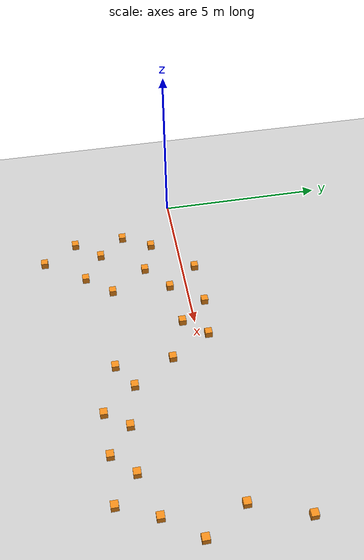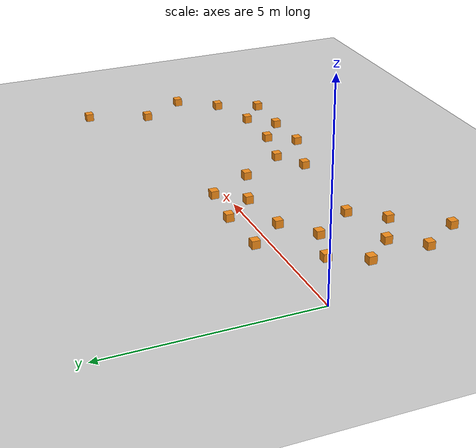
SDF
<sdf version="1.5">
 <world name="default">
  <physics name="fast" type="ignored">
   <max_step_size>0.001</max_step_size>
   <real_time_factor>0</real_time_factor>
  </physics>
  <plugin filename="ignition-gazebo-physics-system" name="ignition::gazebo::systems::Physics"/>
  <plugin filename="ignition-gazebo-user-commands-system" name="ignition::gazebo::systems::UserCommands"/>
  <plugin filename="ignition-gazebo-scene-broadcaster-system" name="ignition::gazebo::systems::SceneBroadcaster"/>
  <plugin filename="ignition-gazebo-contact-system" name="ignition::gazebo::systems::Contact"/>
  <include><uri>model://sun</uri></include>
  <include><uri>model://ground_plane</uri></include>
  <model name="unit_box_clone">
   <pose>1.72976 -0.812197 0.100735 4e-06 -3e-06 0</pose>
   <link name="link">
    <inertial>
     <mass>1</mass>
     <inertia>
      <ixx>0.166667</ixx>
      <ixy>0</ixy>
      <ixz>0</ixz>
      <iyy>0.166667</iyy>
      <iyz>0</iyz>
      <izz>0.166667</izz>
     </inertia>
    </inertial>
    <collision name="collision">
     <geometry><box><size>0.201469 0.201469 0.201469</size></box></geometry>
    </collision>
    <visual name="visual">
     <geometry><box><size>0.201469 0.201469 0.201469</size></box></geometry>
     <material>
      <script><name>Gazebo/Orange</name><uri>file://media/materials/scripts/gazebo.material</uri></script>
     </material>
    </visual>
   </link>
  </model>
  <model name="unit_box_clone_0">
   <pose>1.24328 -1.66091 0.100735 4e-06 -3e-06 0</pose>
   <link name="link">
    <inertial>
     <mass>1</mass>
     <inertia>
      <ixx>0.166667</ixx>
      <ixy>0</ixy>
      <ixz>0</ixz>
      <iyy>0.166667</iyy>
      <iyz>0</iyz>
      <izz>0.166667</izz>
     </inertia>
    </inertial>
    <collision name="collision">
     <geometry><box><size>0.201469 0.201469 0.201469</size></box></geometry>
    </collision>
    <visual name="visual">
     <geometry><box><size>0.201469 0.201469 0.201469</size></box></geometry>
     <material>
      <script><name>Gazebo/Orange</name><uri>file://media/materials/scripts/gazebo.material</uri></script>
     </material>
    </visual>
   </link>
  </model>
  <model name="unit_box_clone_1">
   <pose>1.90588 -2.41851 0.100735 4e-06 -3e-06 0</pose>
   <link name="link">
    <inertial>
     <mass>1</mass>
     <inertia>
      <ixx>0.166667</ixx>
      <ixy>0</ixy>
      <ixz>0</ixz>
      <iyy>0.166667</iyy>
      <iyz>0</iyz>
      <izz>0.166667</izz>
     </inertia>
    </inertial>
    <collision name="collision">
     <geometry><box><size>0.201469 0.201469 0.201469</size></box></geometry>
    </collision>
    <visual name="visual">
     <geometry><box><size>0.201469 0.201469 0.201469</size></box></geometry>
     <material>
      <script><name>Gazebo/Orange</name><uri>file://media/materials/scripts/gazebo.material</uri></script>
     </material>
    </visual>
   </link>
  </model>
  <model name="unit_box_clone_2">
   <pose>1.30367 -3.1595 0.100734 4e-06 -3e-06 0</pose>
   <link name="link">
    <inertial>
     <mass>1</mass>
     <inertia>
      <ixx>0.166667</ixx>
      <ixy>0</ixy>
      <ixz>0</ixz>
      <iyy>0.166667</iyy>
      <iyz>0</iyz>
      <izz>0.166667</izz>
     </inertia>
    </inertial>
    <collision name="collision">
     <geometry><box><size>0.201469 0.201469 0.201469</size></box></geometry>
    </collision>
    <visual name="visual">
     <geometry><box><size>0.201469 0.201469 0.201469</size></box></geometry>
     <material>
      <script><name>Gazebo/Orange</name><uri>file://media/materials/scripts/gazebo.material</uri></script>
     </material>
    </visual>
   </link>
  </model>
  <model name="unit_box_clone_3">
   <pose>1.95368 -4.16063 0.100734 4e-06 -3e-06 0</pose>
   <link name="link">
    <inertial>
     <mass>1</mass>
     <inertia>
      <ixx>0.166667</ixx>
      <ixy>0</ixy>
      <ixz>0</ixz>
      <iyy>0.166667</iyy>
      <iyz>0</iyz>
      <izz>0.166667</izz>
     </inertia>
    </inertial>
    <collision name="collision">
     <geometry><box><size>0.201469 0.201469 0.201469</size></box></geometry>
    </collision>
    <visual name="visual">
     <geometry><box><size>0.201469 0.201469 0.201469</size></box></geometry>
     <material>
      <script><name>Gazebo/Orange</name><uri>file://media/materials/scripts/gazebo.material</uri></script>
     </material>
    </visual>
   </link>
  </model>
  <model name="unit_box_clone_4">
   <pose>2.8029 -2.96481 0.100734 4e-06 -3e-06 0</pose>
   <link name="link">
    <inertial>
     <mass>1</mass>
     <inertia>
      <ixx>0.166667</ixx>
      <ixy>0</ixy>
      <ixz>0</ixz>
      <iyy>0.166667</iyy>
      <iyz>0</iyz>
      <izz>0.166667</izz>
     </inertia>
    </inertial>
    <collision name="collision">
     <geometry><box><size>0.201469 0.201469 0.201469</size></box></geometry>
    </collision>
    <visual name="visual">
     <geometry><box><size>0.201469 0.201469 0.201469</size></box></geometry>
     <material>
      <script><name>Gazebo/Orange</name><uri>file://media/materials/scripts/gazebo.material</uri></script>
     </material>
    </visual>
   </link>
  </model>
  <model name="unit_box_clone_5">
   <pose>3.46356 -2.2145 0.100734 4e-06 -3e-06 0</pose>
   <link name="link">
    <inertial>
     <mass>1</mass>
     <inertia>
      <ixx>0.166667</ixx>
      <ixy>0</ixy>
      <ixz>0</ixz>
      <iyy>0.166667</iyy>
      <iyz>0</iyz>
      <izz>0.166667</izz>
     </inertia>
    </inertial>
    <collision name="collision">
     <geometry><box><size>0.201469 0.201469 0.201469</size></box></geometry>
    </collision>
    <visual name="visual">
     <geometry><box><size>0.201469 0.201469 0.201469</size></box></geometry>
     <material>
      <script><name>Gazebo/Orange</name><uri>file://media/materials/scripts/gazebo.material</uri></script>
     </material>
    </visual>
   </link>
  </model>
  <model name="unit_box_clone_6">
   <pose>2.72766 -1.14347 0.100734 4e-06 -3e-06 0</pose>
   <link name="link">
    <inertial>
     <mass>1</mass>
     <inertia>
      <ixx>0.166667</ixx>
      <ixy>0</ixy>
      <ixz>0</ixz>
      <iyy>0.166667</iyy>
      <iyz>0</iyz>
      <izz>0.166667</izz>
     </inertia>
    </inertial>
    <collision name="collision">
     <geometry><box><size>0.201469 0.201469 0.201469</size></box></geometry>
    </collision>
    <visual name="visual">
     <geometry><box><size>0.201469 0.201469 0.201469</size></box></geometry>
     <material>
      <script><name>Gazebo/Orange</name><uri>file://media/materials/scripts/gazebo.material</uri></script>
     </material>
    </visual>
   </link>
  </model>
  <model name="unit_box_clone_7">
   <pose>3.55881 -0.496748 0.100734 4e-06 -3e-06 0</pose>
   <link name="link">
    <inertial>
     <mass>1</mass>
     <inertia>
      <ixx>0.166667</ixx>
      <ixy>0</ixy>
      <ixz>0</ixz>
      <iyy>0.166667</iyy>
      <iyz>0</iyz>
      <izz>0.166667</izz>
     </inertia>
    </inertial>
    <collision name="collision">
     <geometry><box><size>0.201469 0.201469 0.201469</size></box></geometry>
    </collision>
    <visual name="visual">
     <geometry><box><size>0.201469 0.201469 0.201469</size></box></geometry>
     <material>
      <script><name>Gazebo/Orange</name><uri>file://media/materials/scripts/gazebo.material</uri></script>
     </material>
    </visual>
   </link>
  </model>
  <model name="unit_box_clone_8">
   <pose>2.8727 0.379101 0.100734 4e-06 -3e-06 0</pose>
   <link name="link">
    <inertial>
     <mass>1</mass>
     <inertia>
      <ixx>0.166667</ixx>
      <ixy>0</ixy>
      <ixz>0</ixz>
      <iyy>0.166667</iyy>
      <iyz>0</iyz>
      <izz>0.166667</izz>
     </inertia>
    </inertial>
    <collision name="collision">
     <geometry><box><size>0.201469 0.201469 0.201469</size></box></geometry>
    </collision>
    <visual name="visual">
     <geometry><box><size>0.201469 0.201469 0.201469</size></box></geometry>
     <material>
      <script><name>Gazebo/Orange</name><uri>file://media/materials/scripts/gazebo.material</uri></script>
     </material>
    </visual>
   </link>
  </model>
  <model name="unit_box_clone_9">
   <pose>4.2939 0.422765 0.100734 4e-06 -3e-06 0</pose>
   <link name="link">
    <inertial>
     <mass>1</mass>
     <inertia>
      <ixx>0.166667</ixx>
      <ixy>0</ixy>
      <ixz>0</ixz>
      <iyy>0.166667</iyy>
      <iyz>0</iyz>
      <izz>0.166667</izz>
     </inertia>
    </inertial>
    <collision name="collision">
     <geometry><box><size>0.201469 0.201469 0.201469</size></box></geometry>
    </collision>
    <visual name="visual">
     <geometry><box><size>0.201469 0.201469 0.201469</size></box></geometry>
     <material>
      <script><name>Gazebo/Orange</name><uri>file://media/materials/scripts/gazebo.material</uri></script>
     </material>
    </visual>
   </link>
  </model>
  <model name="unit_box_clone_10">
   <pose>4.9692 -0.356687 0.100734 4e-06 -3e-06 0</pose>
   <link name="link">
    <inertial>
     <mass>1</mass>
     <inertia>
      <ixx>0.166667</ixx>
      <ixy>0</ixy>
      <ixz>0</ixz>
      <iyy>0.166667</iyy>
      <iyz>0</iyz>
      <izz>0.166667</izz>
     </inertia>
    </inertial>
    <collision name="collision">
     <geometry><box><size>0.201469 0.201469 0.201469</size></box></geometry>
    </collision>
    <visual name="visual">
     <geometry><box><size>0.201469 0.201469 0.201469</size></box></geometry>
     <material>
      <script><name>Gazebo/Orange</name><uri>file://media/materials/scripts/gazebo.material</uri></script>
     </material>
    </visual>
   </link>
  </model>
  <model name="unit_box_clone_11">
   <pose>5.54943 0.300041 0.100734 4e-06 -3e-06 0</pose>
   <link name="link">
    <inertial>
     <mass>1</mass>
     <inertia>
      <ixx>0.166667</ixx>
      <ixy>0</ixy>
      <ixz>0</ixz>
      <iyy>0.166667</iyy>
      <iyz>0</iyz>
      <izz>0.166667</izz>
     </inertia>
    </inertial>
    <collision name="collision">
     <geometry><box><size>0.201469 0.201469 0.201469</size></box></geometry>
    </collision>
    <visual name="visual">
     <geometry><box><size>0.201469 0.201469 0.201469</size></box></geometry>
     <material>
      <script><name>Gazebo/Orange</name><uri>file://media/materials/scripts/gazebo.material</uri></script>
     </material>
    </visual>
   </link>
  </model>
  <model name="unit_box_clone_12">
   <pose>6.22487 -0.841816 0.100734 4e-06 -3e-06 0</pose>
   <link name="link">
    <inertial>
     <mass>1</mass>
     <inertia>
      <ixx>0.166667</ixx>
      <ixy>0</ixy>
      <ixz>0</ixz>
      <iyy>0.166667</iyy>
      <iyz>0</iyz>
      <izz>0.166667</izz>
     </inertia>
    </inertial>
    <collision name="collision">
     <geometry><box><size>0.201469 0.201469 0.201469</size></box></geometry>
    </collision>
    <visual name="visual">
     <geometry><box><size>0.201469 0.201469 0.201469</size></box></geometry>
     <material>
      <script><name>Gazebo/Orange</name><uri>file://media/materials/scripts/gazebo.material</uri></script>
     </material>
    </visual>
   </link>
  </model>
  <model name="unit_box_clone_13">
   <pose>6.97691 -2.01097 0.100734 4e-06 -3e-06 0</pose>
   <link name="link">
    <inertial>
     <mass>1</mass>
     <inertia>
      <ixx>0.166667</ixx>
      <ixy>0</ixy>
      <ixz>0</ixz>
      <iyy>0.166667</iyy>
      <iyz>0</iyz>
      <izz>0.166667</izz>
     </inertia>
    </inertial>
    <collision name="collision">
     <geometry><box><size>0.201469 0.201469 0.201469</size></box></geometry>
    </collision>
    <visual name="visual">
     <geometry><box><size>0.201469 0.201469 0.201469</size></box></geometry>
     <material>
      <script><name>Gazebo/Orange</name><uri>file://media/materials/scripts/gazebo.material</uri></script>
     </material>
    </visual>
   </link>
  </model>
  <model name="unit_box_clone_14">
   <pose>6.24107 -2.4559 0.100734 4e-06 -3e-06 0</pose>
   <link name="link">
    <inertial>
     <mass>1</mass>
     <inertia>
      <ixx>0.166667</ixx>
      <ixy>0</ixy>
      <ixz>0</ixz>
      <iyy>0.166667</iyy>
      <iyz>0</iyz>
      <izz>0.166667</izz>
     </inertia>
    </inertial>
    <collision name="collision">
     <geometry><box><size>0.201469 0.201469 0.201469</size></box></geometry>
    </collision>
    <visual name="visual">
     <geometry><box><size>0.201469 0.201469 0.201469</size></box></geometry>
     <material>
      <script><name>Gazebo/Orange</name><uri>file://media/materials/scripts/gazebo.material</uri></script>
     </material>
    </visual>
   </link>
  </model>
  <model name="unit_box_clone_15">
   <pose>7.71583 -2.9299 0.100734 4e-06 -3e-06 0</pose>
   <link name="link">
    <inertial>
     <mass>1</mass>
     <inertia>
      <ixx>0.166667</ixx>
      <ixy>0</ixy>
      <ixz>0</ixz>
      <iyy>0.166667</iyy>
      <iyz>0</iyz>
      <izz>0.166667</izz>
     </inertia>
    </inertial>
    <collision name="collision">
     <geometry><box><size>0.201469 0.201469 0.201469</size></box></geometry>
    </collision>
    <visual name="visual">
     <geometry><box><size>0.201469 0.201469 0.201469</size></box></geometry>
     <material>
      <script><name>Gazebo/Orange</name><uri>file://media/materials/scripts/gazebo.material</uri></script>
     </material>
    </visual>
   </link>
  </model>
  <model name="unit_box_clone_16">
   <pose>8.20631 -2.28708 0.100734 4e-06 -3e-06 0</pose>
   <link name="link">
    <inertial>
     <mass>1</mass>
     <inertia>
      <ixx>0.166667</ixx>
      <ixy>0</ixy>
      <ixz>0</ixz>
      <iyy>0.166667</iyy>
      <iyz>0</iyz>
      <izz>0.166667</izz>
     </inertia>
    </inertial>
    <collision name="collision">
     <geometry><box><size>0.201469 0.201469 0.201469</size></box></geometry>
    </collision>
    <visual name="visual">
     <geometry><box><size>0.201469 0.201469 0.201469</size></box></geometry>
     <material>
      <script><name>Gazebo/Orange</name><uri>file://media/materials/scripts/gazebo.material</uri></script>
     </material>
    </visual>
   </link>
  </model>
  <model name="unit_box_clone_17">
   <pose>8.98857 -2.90039 0.100734 4e-06 -3e-06 0</pose>
   <link name="link">
    <inertial>
     <mass>1</mass>
     <inertia>
      <ixx>0.166667</ixx>
      <ixy>0</ixy>
      <ixz>0</ixz>
      <iyy>0.166667</iyy>
      <iyz>0</iyz>
      <izz>0.166667</izz>
     </inertia>
    </inertial>
    <collision name="collision">
     <geometry><box><size>0.201469 0.201469 0.201469</size></box></geometry>
    </collision>
    <visual name="visual">
     <geometry><box><size>0.201469 0.201469 0.201469</size></box></geometry>
     <material>
      <script><name>Gazebo/Orange</name><uri>file://media/materials/scripts/gazebo.material</uri></script>
     </material>
    </visual>
   </link>
  </model>
  <model name="unit_box_clone_18">
   <pose>9.60124 -2.29588 0.100734 4e-06 -3e-06 0</pose>
   <link name="link">
    <inertial>
     <mass>1</mass>
     <inertia>
      <ixx>0.166667</ixx>
      <ixy>0</ixy>
      <ixz>0</ixz>
      <iyy>0.166667</iyy>
      <iyz>0</iyz>
      <izz>0.166667</izz>
     </inertia>
    </inertial>
    <collision name="collision">
     <geometry><box><size>0.201469 0.201469 0.201469</size></box></geometry>
    </collision>
    <visual name="visual">
     <geometry><box><size>0.201469 0.201469 0.201469</size></box></geometry>
     <material>
      <script><name>Gazebo/Orange</name><uri>file://media/materials/scripts/gazebo.material</uri></script>
     </material>
    </visual>
   </link>
  </model>
  <model name="unit_box_clone_19">
   <pose>10.3805 -2.94608 0.100734 4e-06 -3e-06 0</pose>
   <link name="link">
    <inertial>
     <mass>1</mass>
     <inertia>
      <ixx>0.166667</ixx>
      <ixy>0</ixy>
      <ixz>0</ixz>
      <iyy>0.166667</iyy>
      <iyz>0</iyz>
      <izz>0.166667</izz>
     </inertia>
    </inertial>
    <collision name="collision">
     <geometry><box><size>0.201469 0.201469 0.201469</size></box></geometry>
    </collision>
    <visual name="visual">
     <geometry><box><size>0.201469 0.201469 0.201469</size></box></geometry>
     <material>
      <script><name>Gazebo/Orange</name><uri>file://media/materials/scripts/gazebo.material</uri></script>
     </material>
    </visual>
   </link>
  </model>
  <model name="unit_box_clone_20">
   <pose>10.8575 -1.90122 0.100734 4e-06 -3e-06 0</pose>
   <link name="link">
    <inertial>
     <mass>1</mass>
     <inertia>
      <ixx>0.166667</ixx>
      <ixy>0</ixy>
      <ixz>0</ixz>
      <iyy>0.166667</iyy>
      <iyz>0</iyz>
      <izz>0.166667</izz>
     </inertia>
    </inertial>
    <collision name="collision">
     <geometry><box><size>0.201469 0.201469 0.201469</size></box></geometry>
    </collision>
    <visual name="visual">
     <geometry><box><size>0.201469 0.201469 0.201469</size></box></geometry>
     <material>
      <script><name>Gazebo/Orange</name><uri>file://media/materials/scripts/gazebo.material</uri></script>
     </material>
    </visual>
   </link>
  </model>
  <model name="unit_box_clone_21">
   <pose>11.5803 -0.944816 0.100734 4e-06 -3e-06 0</pose>
   <link name="link">
    <inertial>
     <mass>1</mass>
     <inertia>
      <ixx>0.166667</ixx>
      <ixy>0</ixy>
      <ixz>0</ixz>
      <iyy>0.166667</iyy>
      <iyz>0</iyz>
      <izz>0.166667</izz>
     </inertia>
    </inertial>
    <collision name="collision">
     <geometry><box><size>0.201469 0.201469 0.201469</size></box></geometry>
    </collision>
    <visual name="visual">
     <geometry><box><size>0.201469 0.201469 0.201469</size></box></geometry>
     <material>
      <script><name>Gazebo/Orange</name><uri>file://media/materials/scripts/gazebo.material</uri></script>
     </material>
    </visual>
   </link>
  </model>
  <model name="unit_box_clone_22">
   <pose>10.8775 0.204691 0.100735 4e-06 -3e-06 0</pose>
   <link name="link">
    <inertial>
     <mass>1</mass>
     <inertia>
      <ixx>0.166667</ixx>
      <ixy>0</ixy>
      <ixz>0</ixz>
      <iyy>0.166667</iyy>
      <iyz>0</iyz>
      <izz>0.166667</izz>
     </inertia>
    </inertial>
    <collision name="collision">
     <geometry><box><size>0.201469 0.201469 0.201469</size></box></geometry>
    </collision>
    <visual name="visual">
     <geometry><box><size>0.201469 0.201469 0.201469</size></box></geometry>
     <material>
      <script><name>Gazebo/Orange</name><uri>file://media/materials/scripts/gazebo.material</uri></script>
     </material>
    </visual>
   </link>
  </model>
  <model name="unit_box_clone_23">
   <pose>11.464 1.72022 0.100735 4e-06 -3e-06 0</pose>
   <link name="link">
    <inertial>
     <mass>1</mass>
     <inertia>
      <ixx>0.166667</ixx>
      <ixy>0</ixy>
      <ixz>0</ixz>
      <iyy>0.166667</iyy>
      <iyz>0</iyz>
      <izz>0.166667</izz>
     </inertia>
    </inertial>
    <collision name="collision">
     <geometry><box><size>0.201469 0.201469 0.201469</size></box></geometry>
    </collision>
    <visual name="visual">
     <geometry><box><size>0.201469 0.201469 0.201469</size></box></geometry>
     <material>
      <script><name>Gazebo/Orange</name><uri>file://media/materials/scripts/gazebo.material</uri></script>
     </material>
    </visual>
   </link>
  </model>
 </world>
</sdf>
